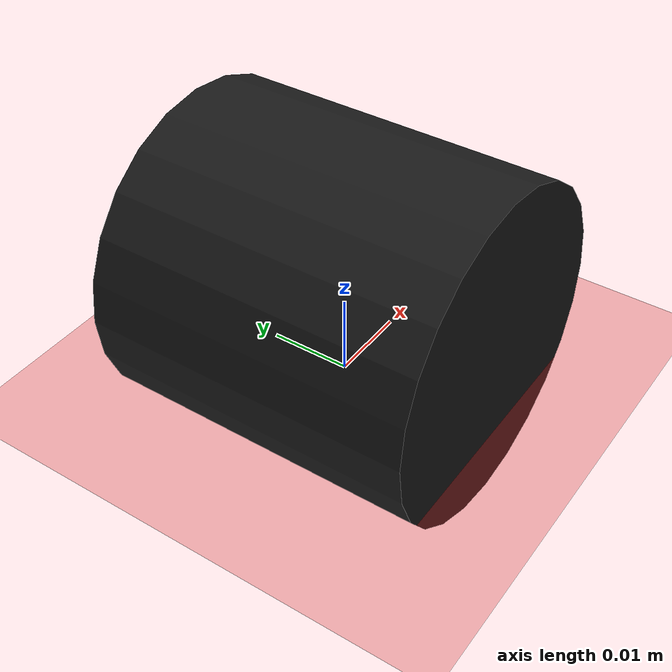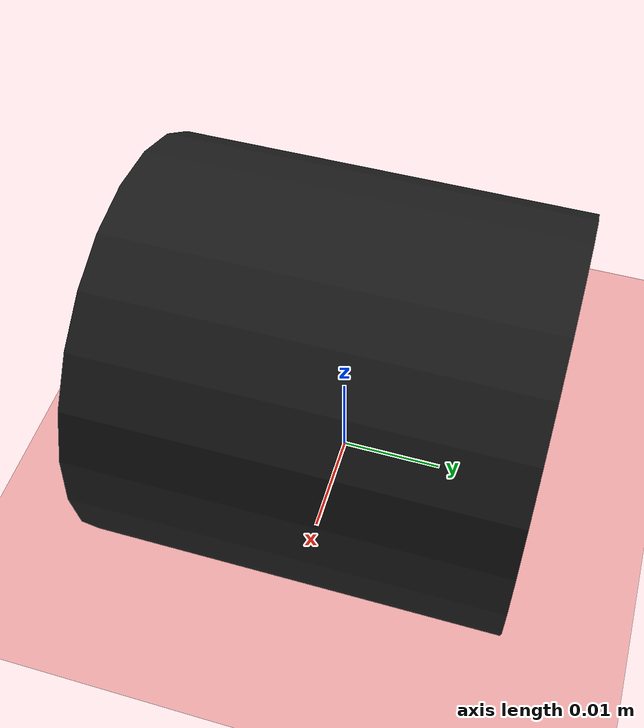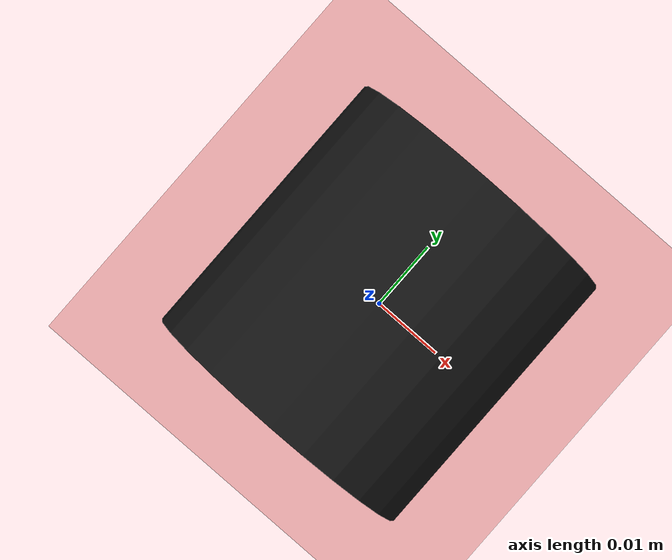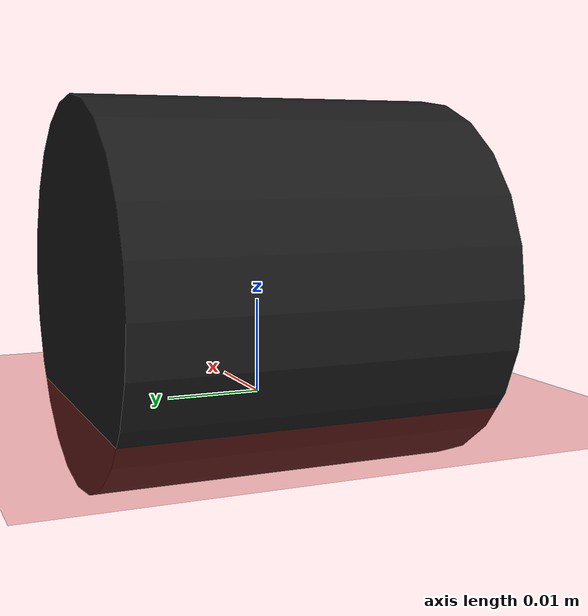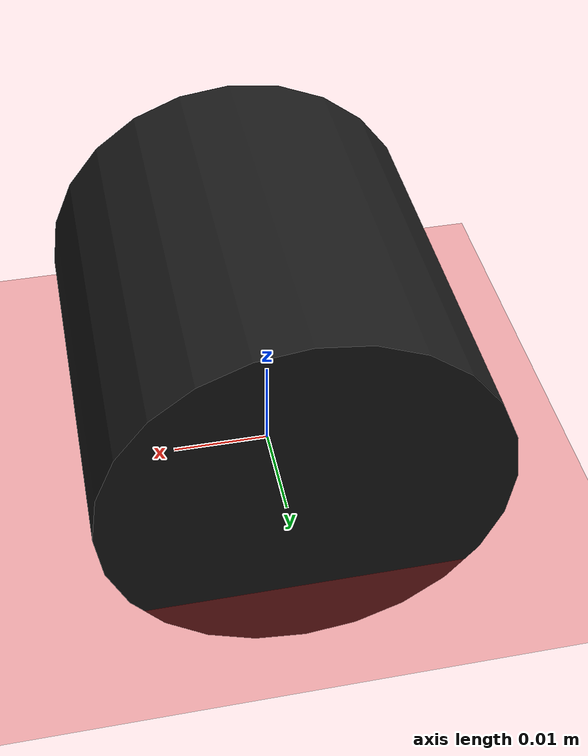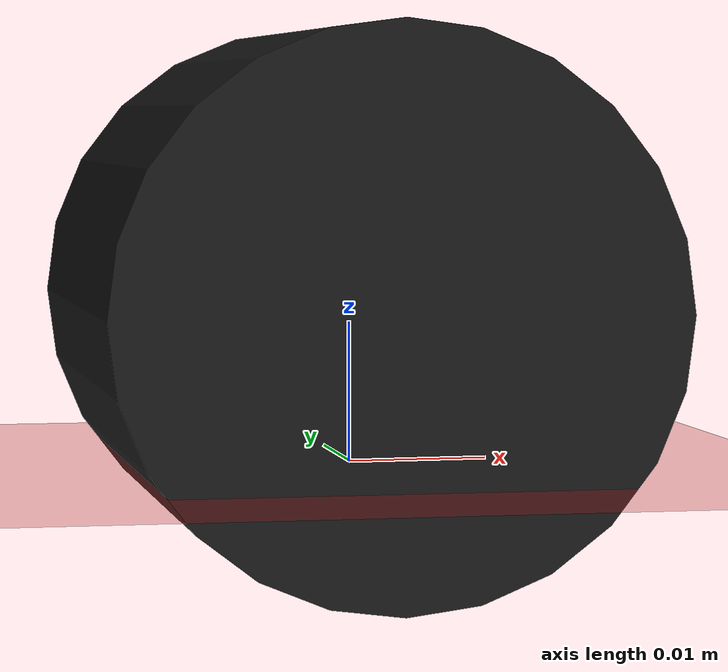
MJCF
<mujoco>
    <worldbody>
        <light diffuse="0.7 0.7 0.7" pos="0 0 0"/>
        <geom name="ground" type="plane" size="10 10 0.1" rgba="0.8 0.1 0.1 1"/>
        <body>
            <geom type="cylinder" pos="0 0 0.0115" size="0.0198 0.0198" rgba="0.1 0.1 0.1 1" euler="90 0 0"/>
        </body>
    </worldbody>
</mujoco>
